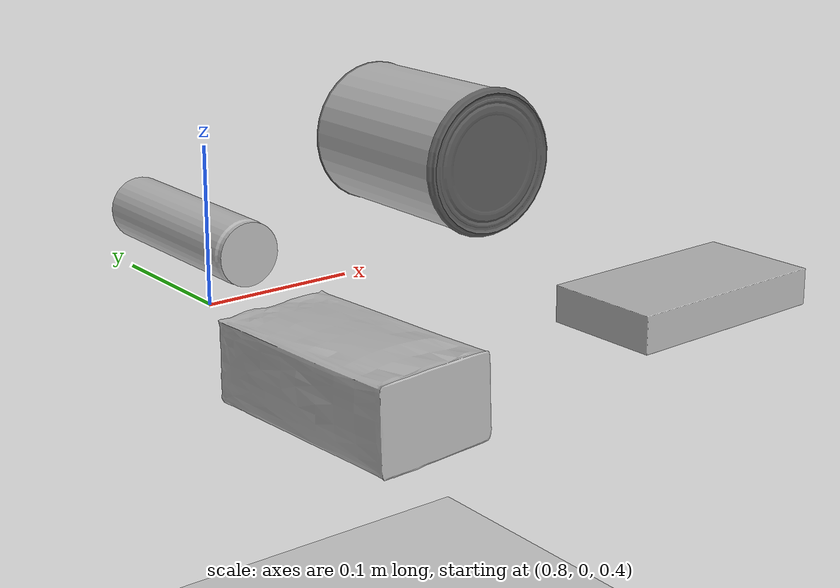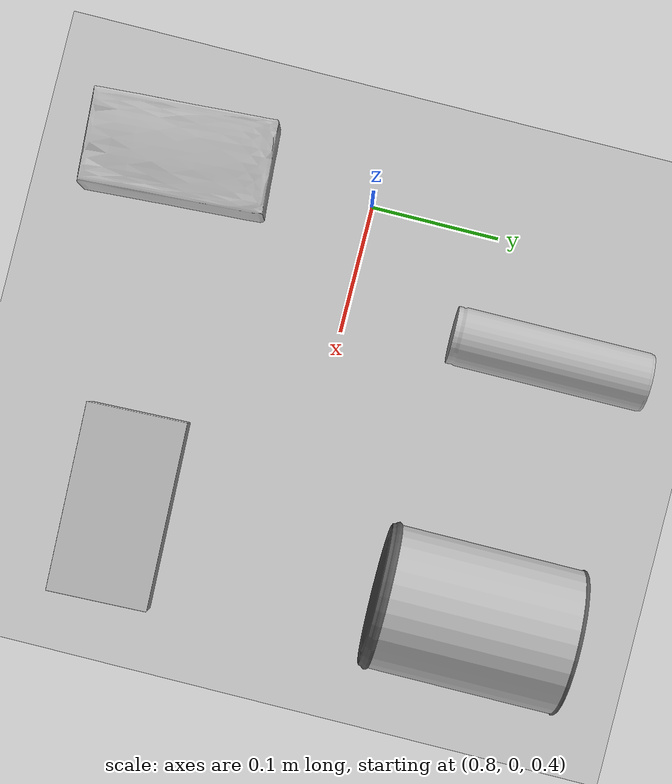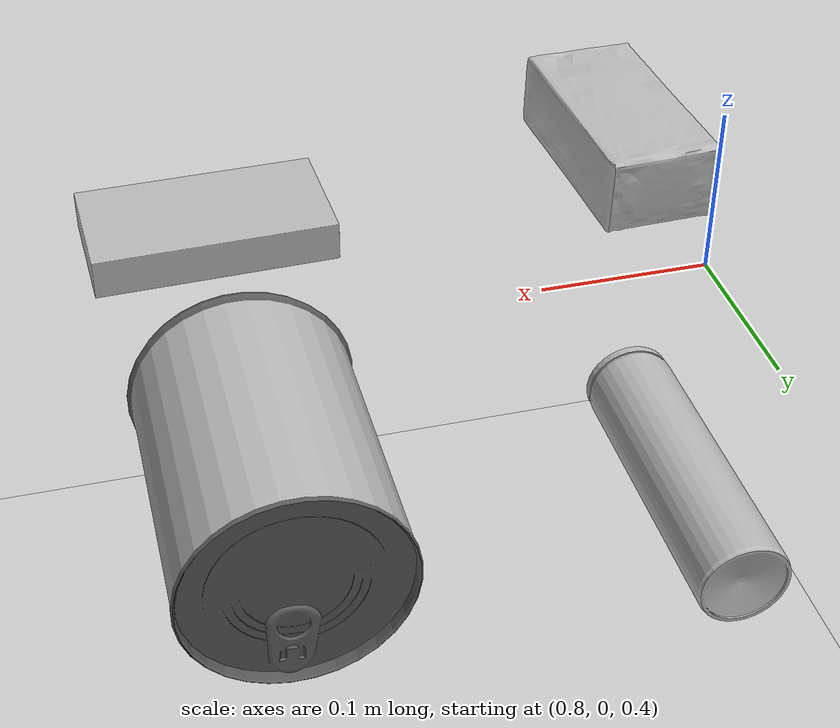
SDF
<sdf version="1.7">
 <world name="default">
  <light name="sun" type="directional">
   <pose>0 0 10 0 -0 0</pose>
   <diffuse>0.8 0.8 0.8 1</diffuse>
   <specular>0.2 0.2 0.2 1</specular>
   <attenuation>
    <range>1000</range>
    <constant>0.9</constant>
    <linear>0.01</linear>
    <quadratic>0.001</quadratic>
   </attenuation>
   <direction>-0.5 0.1 -0.9</direction>
   <spot><inner_angle>0</inner_angle><outer_angle>0</outer_angle><falloff>0</falloff></spot>
  </light>
  <model name="ground_plane">
   <static>1</static>
   <link name="link">
    <collision name="collision">
     <geometry><plane><normal>0 0 1</normal><size>100 100</size></plane></geometry>
     <surface><friction><ode><mu>100</mu><mu2>50</mu2></ode></friction></surface>
    </collision>
    <visual name="visual">
     <cast_shadows>0</cast_shadows>
     <geometry><plane><normal>0 0 1</normal><size>100 100</size></plane></geometry>
     <material>
      <script><uri>file://media/materials/scripts/gazebo.material</uri><name>Gazebo/Grey</name></script>
     </material>
    </visual>
   </link>
  </model>
  <gravity>0 0 -9.8</gravity>
  <magnetic_field>6e-06 2.3e-05 -4.2e-05</magnetic_field>
  <atmosphere type="adiabatic"/>
  <physics type="ode">
   <max_step_size>0.001</max_step_size>
   <real_time_factor>1</real_time_factor>
   <real_time_update_rate>1000</real_time_update_rate>
  </physics>
  <scene><ambient>0.4 0.4 0.4 1</ambient><background>0.7 0.7 0.7 1</background><shadows>1</shadows></scene>
  <spherical_coordinates>
   <surface_model>EARTH_WGS84</surface_model>
   <latitude_deg>0</latitude_deg>
   <longitude_deg>0</longitude_deg>
   <elevation>0</elevation>
   <heading_deg>0</heading_deg>
  </spherical_coordinates>
  <model name="MyWorld_0">
   <model name="oats_box">
    <link name="link">
     <inertial>
      <mass>0.001</mass>
      <inertia><ixx>1e-05</ixx><ixy>0</ixy><ixz>0</ixz><iyy>1e-05</iyy><iyz>0</iyz><izz>1e-05</izz></inertia>
     </inertial>
     <collision name="collision">
      <geometry><mesh><uri>/home/jan/ws_myrobot/src/myrobot/model/objects/oats/oats.dae</uri></mesh></geometry>
      <surface>
       <friction><ode><mu>1</mu><mu2>1</mu2></ode></friction>
       <contact><ode><kp>1e+07</kp><kd>1</kd><min_depth>0</min_depth><max_vel>0.01</max_vel></ode></contact>
      </surface>
     </collision>
     <visual name="visual">
      <geometry><mesh><uri>/home/jan/ws_myrobot/src/myrobot/model/objects/oats/oats.dae</uri></mesh></geometry>
      <material><lighting>1</lighting><shader type="pixel"/></material>
     </visual>
    </link>
   </model>
   <static>0</static>
   <pose>0.797335 -0.153365 0.399861 -2.60524 1.54537 -0.970615</pose>
  </model>
  <model name="MyWorld_1">
   <model name="tea_box">
    <link name="link">
     <inertial>
      <mass>0.001</mass>
      <inertia><ixx>1e-05</ixx><ixy>0</ixy><ixz>0</ixz><iyy>1e-05</iyy><iyz>0</iyz><izz>1e-05</izz></inertia>
     </inertial>
     <collision name="collision">
      <geometry><mesh><uri>/home/jan/ws_myrobot/src/myrobot/model/objects/tea/tea.dae</uri></mesh></geometry>
      <surface>
       <friction><ode><mu>1</mu><mu2>1</mu2></ode></friction>
       <contact><ode><kp>1e+07</kp><kd>1</kd><min_depth>0</min_depth><max_vel>0.01</max_vel></ode></contact>
      </surface>
     </collision>
     <visual name="visual">
      <geometry><mesh><uri>/home/jan/ws_myrobot/src/myrobot/model/objects/tea/tea.dae</uri></mesh></geometry>
      <material><lighting>1</lighting><shader type="pixel"/></material>
     </visual>
    </link>
   </model>
   <static>0</static>
   <pose>1.07292 -0.134842 0.385774 1.57091 -0.000203 1.60432</pose>
  </model>
  <model name="MyWorld_2">
   <model name="crisps_can">
    <link name="link">
     <inertial>
      <mass>0.001</mass>
      <inertia><ixx>1e-05</ixx><ixy>0</ixy><ixz>0</ixz><iyy>1e-05</iyy><iyz>0</iyz><izz>1e-05</izz></inertia>
     </inertial>
     <collision name="collision">
      <geometry><mesh><uri>/home/jan/ws_myrobot/src/myrobot/model/objects/crisps/crisps.dae</uri></mesh></geometry>
      <surface>
       <friction><ode><mu>1</mu><mu2>1</mu2></ode></friction>
       <contact><ode><kp>1e+07</kp><kd>1</kd><min_depth>0</min_depth><max_vel>0.01</max_vel></ode></contact>
      </surface>
     </collision>
     <visual name="visual">
      <geometry><mesh><uri>/home/jan/ws_myrobot/src/myrobot/model/objects/crisps/crisps.dae</uri></mesh></geometry>
      <material><lighting>1</lighting><shader type="pixel"/></material>
     </visual>
    </link>
   </model>
   <static>0</static>
   <pose>0.879753 0.158775 0.396231 0 -0.098171 0.002828</pose>
  </model>
  <model name="MyWorld_3">
   <model name="soup_can">
    <link name="link">
     <inertial>
      <mass>0.001</mass>
      <inertia><ixx>1e-05</ixx><ixy>0</ixy><ixz>0</ixz><iyy>1e-05</iyy><iyz>0</iyz><izz>1e-05</izz></inertia>
     </inertial>
     <collision name="collision">
      <geometry><mesh><uri>/home/jan/ws_myrobot/src/myrobot/model/objects/soup/soup.dae</uri></mesh></geometry>
      <surface>
       <friction><ode><mu>1</mu><mu2>1</mu2></ode></friction>
       <contact><ode><kp>1e+07</kp><kd>1</kd><min_depth>0</min_depth><max_vel>0.01</max_vel></ode></contact>
      </surface>
     </collision>
     <visual name="visual">
      <geometry><mesh><uri>/home/jan/ws_myrobot/src/myrobot/model/objects/soup/soup.dae</uri></mesh></geometry>
      <material><lighting>1</lighting><shader type="pixel"/></material>
     </visual>
    </link>
    <pose>1e-06 0 0 3.13803 -0 0</pose>
   </model>
   <static>0</static>
   <pose>1.08552 0.14732 0.429211 -0.004214 -0.098193 -0.000186</pose>
  </model>
 </world>
</sdf>
